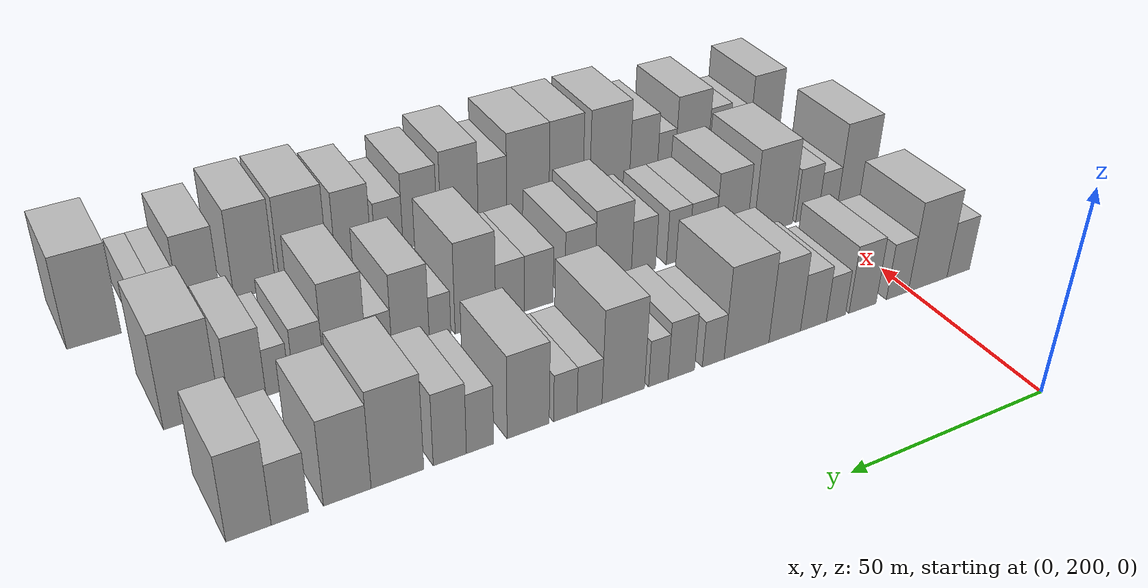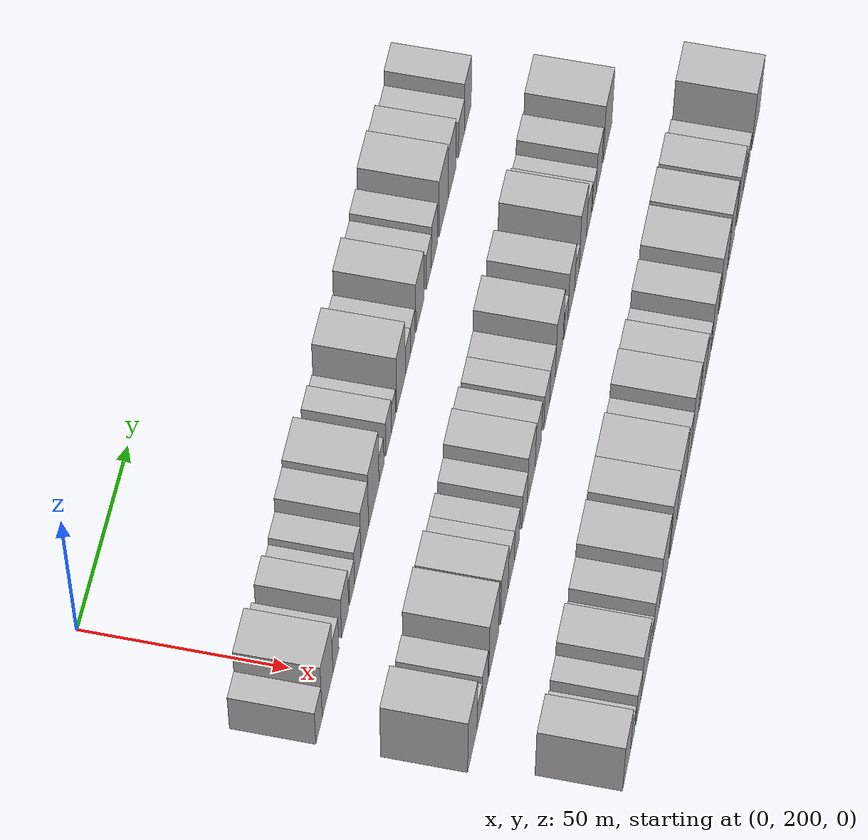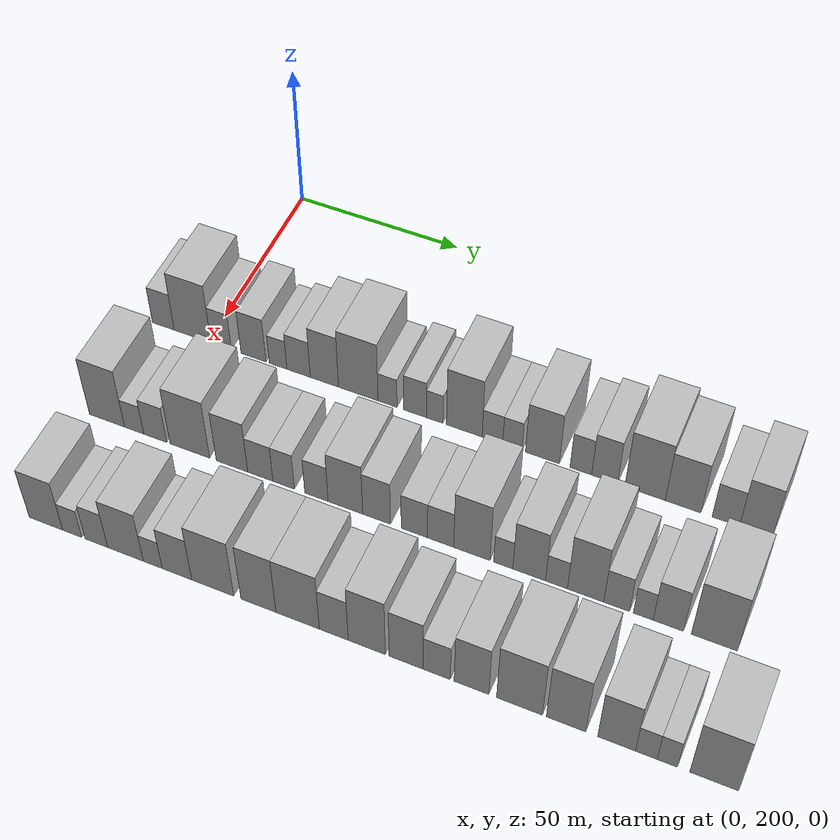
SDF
<sdf version="1.6">
 <world name="default">
  <model name="building_57">
   <static>1</static>
   <pose>50.0000 185.6866 0 0.000000 0.000000 0.000000</pose>
   <link name="link">
    <pose>0 0 7.50 0 0 0</pose>
    <collision name="collision"><geometry><box><size>20.0000 6.8643 15.0000</size></box></geometry></collision>
    <visual name="visual">
     <cast_shadows>0</cast_shadows>
     <geometry><box><size>20.0000 6.8643 15.0000</size></box></geometry>
     <material>
      <script>
       <uri>model://HANNAS_wall/materials/scripts</uri>
       <uri>model://HANNAS_wall/materials/textures</uri>
       <name>vrc/HANNAS_wall</name>
      </script>
     </material>
    </visual>
   </link>
  </model>
  <model name="building_58">
   <static>1</static>
   <pose>50.0000 194.8957 0 0.000000 0.000000 0.000000</pose>
   <link name="link">
    <pose>0 0 12.00 0 0 0</pose>
    <collision name="collision"><geometry><box><size>20.0000 11.5538 24.0000</size></box></geometry></collision>
    <visual name="visual">
     <cast_shadows>0</cast_shadows>
     <geometry><box><size>20.0000 11.5538 24.0000</size></box></geometry>
     <material>
      <script>
       <uri>model://HANNAS_wall/materials/scripts</uri>
       <uri>model://HANNAS_wall/materials/textures</uri>
       <name>vrc/HANNAS_wall</name>
      </script>
     </material>
    </visual>
   </link>
  </model>
  <model name="building_59">
   <static>1</static>
   <pose>50.0000 203.8842 0 0.000000 0.000000 0.000000</pose>
   <link name="link">
    <pose>0 0 7.50 0 0 0</pose>
    <collision name="collision"><geometry><box><size>20.0000 6.4232 15.0000</size></box></geometry></collision>
    <visual name="visual">
     <cast_shadows>0</cast_shadows>
     <geometry><box><size>20.0000 6.4232 15.0000</size></box></geometry>
     <material>
      <script>
       <uri>model://HANNAS_wall/materials/scripts</uri>
       <uri>model://HANNAS_wall/materials/textures</uri>
       <name>vrc/HANNAS_wall</name>
      </script>
     </material>
    </visual>
   </link>
  </model>
  <model name="building_60">
   <static>1</static>
   <pose>50.0000 213.9516 0 0.000000 0.000000 0.000000</pose>
   <link name="link">
    <pose>0 0 9.00 0 0 0</pose>
    <collision name="collision"><geometry><box><size>20.0000 7.7117 18.0000</size></box></geometry></collision>
    <visual name="visual">
     <cast_shadows>0</cast_shadows>
     <geometry><box><size>20.0000 7.7117 18.0000</size></box></geometry>
     <material>
      <script>
       <uri>model://HANNAS_wall/materials/scripts</uri>
       <uri>model://HANNAS_wall/materials/textures</uri>
       <name>vrc/HANNAS_wall</name>
      </script>
     </material>
    </visual>
   </link>
  </model>
  <model name="building_61">
   <static>1</static>
   <pose>50.0000 221.4927 0 0.000000 0.000000 0.000000</pose>
   <link name="link">
    <pose>0 0 6.00 0 0 0</pose>
    <collision name="collision"><geometry><box><size>20.0000 5.3703 12.0000</size></box></geometry></collision>
    <visual name="visual">
     <cast_shadows>0</cast_shadows>
     <geometry><box><size>20.0000 5.3703 12.0000</size></box></geometry>
     <material>
      <script>
       <uri>model://HANNAS_wall/materials/scripts</uri>
       <uri>model://HANNAS_wall/materials/textures</uri>
       <name>vrc/HANNAS_wall</name>
      </script>
     </material>
    </visual>
   </link>
  </model>
  <model name="building_62">
   <static>1</static>
   <pose>50.0000 227.7485 0 0.000000 0.000000 0.000000</pose>
   <link name="link">
    <pose>0 0 7.50 0 0 0</pose>
    <collision name="collision"><geometry><box><size>20.0000 7.1415 15.0000</size></box></geometry></collision>
    <visual name="visual">
     <cast_shadows>0</cast_shadows>
     <geometry><box><size>20.0000 7.1415 15.0000</size></box></geometry>
     <material>
      <script>
       <uri>model://HANNAS_wall/materials/scripts</uri>
       <uri>model://HANNAS_wall/materials/textures</uri>
       <name>vrc/HANNAS_wall</name>
      </script>
     </material>
    </visual>
   </link>
  </model>
  <model name="building_63">
   <static>1</static>
   <pose>50.0000 235.5819 0 0.000000 0.000000 0.000000</pose>
   <link name="link">
    <pose>0 0 10.50 0 0 0</pose>
    <collision name="collision"><geometry><box><size>20.0000 8.5252 21.0000</size></box></geometry></collision>
    <visual name="visual">
     <cast_shadows>0</cast_shadows>
     <geometry><box><size>20.0000 8.5252 21.0000</size></box></geometry>
     <material>
      <script>
       <uri>model://HANNAS_wall/materials/scripts</uri>
       <uri>model://HANNAS_wall/materials/textures</uri>
       <name>vrc/HANNAS_wall</name>
      </script>
     </material>
    </visual>
   </link>
  </model>
  <model name="building_64">
   <static>1</static>
   <pose>50.0000 245.7437 0 0.000000 0.000000 0.000000</pose>
   <link name="link">
    <pose>0 0 12.00 0 0 0</pose>
    <collision name="collision"><geometry><box><size>20.0000 11.7984 24.0000</size></box></geometry></collision>
    <visual name="visual">
     <cast_shadows>0</cast_shadows>
     <geometry><box><size>20.0000 11.7984 24.0000</size></box></geometry>
     <material>
      <script>
       <uri>model://HANNAS_wall/materials/scripts</uri>
       <uri>model://HANNAS_wall/materials/textures</uri>
       <name>vrc/HANNAS_wall</name>
      </script>
     </material>
    </visual>
   </link>
  </model>
  <model name="building_65">
   <static>1</static>
   <pose>50.0000 254.4534 0 0.000000 0.000000 0.000000</pose>
   <link name="link">
    <pose>0 0 6.00 0 0 0</pose>
    <collision name="collision"><geometry><box><size>20.0000 5.6208 12.0000</size></box></geometry></collision>
    <visual name="visual">
     <cast_shadows>0</cast_shadows>
     <geometry><box><size>20.0000 5.6208 12.0000</size></box></geometry>
     <material>
      <script>
       <uri>model://HANNAS_wall/materials/scripts</uri>
       <uri>model://HANNAS_wall/materials/textures</uri>
       <name>vrc/HANNAS_wall</name>
      </script>
     </material>
    </visual>
   </link>
  </model>
  <model name="building_66">
   <static>1</static>
   <pose>50.0000 262.5858 0 0.000000 0.000000 0.000000</pose>
   <link name="link">
    <pose>0 0 7.50 0 0 0</pose>
    <collision name="collision"><geometry><box><size>20.0000 6.6440 15.0000</size></box></geometry></collision>
    <visual name="visual">
     <cast_shadows>0</cast_shadows>
     <geometry><box><size>20.0000 6.6440 15.0000</size></box></geometry>
     <material>
      <script>
       <uri>model://HANNAS_wall/materials/scripts</uri>
       <uri>model://HANNAS_wall/materials/textures</uri>
       <name>vrc/HANNAS_wall</name>
      </script>
     </material>
    </visual>
   </link>
  </model>
  <model name="building_67">
   <static>1</static>
   <pose>50.0000 268.3231 0 0.000000 0.000000 0.000000</pose>
   <link name="link">
    <pose>0 0 6.00 0 0 0</pose>
    <collision name="collision"><geometry><box><size>20.0000 4.8306 12.0000</size></box></geometry></collision>
    <visual name="visual">
     <cast_shadows>0</cast_shadows>
     <geometry><box><size>20.0000 4.8306 12.0000</size></box></geometry>
     <material>
      <script>
       <uri>model://HANNAS_wall/materials/scripts</uri>
       <uri>model://HANNAS_wall/materials/textures</uri>
       <name>vrc/HANNAS_wall</name>
      </script>
     </material>
    </visual>
   </link>
  </model>
  <model name="building_68">
   <static>1</static>
   <pose>50.0000 276.8979 0 0.000000 0.000000 0.000000</pose>
   <link name="link">
    <pose>0 0 12.00 0 0 0</pose>
    <collision name="collision"><geometry><box><size>20.0000 10.3191 24.0000</size></box></geometry></collision>
    <visual name="visual">
     <cast_shadows>0</cast_shadows>
     <geometry><box><size>20.0000 10.3191 24.0000</size></box></geometry>
     <material>
      <script>
       <uri>model://HANNAS_wall/materials/scripts</uri>
       <uri>model://HANNAS_wall/materials/textures</uri>
       <name>vrc/HANNAS_wall</name>
      </script>
     </material>
    </visual>
   </link>
  </model>
  <model name="building_69">
   <static>1</static>
   <pose>50.0000 285.0169 0 0.000000 0.000000 0.000000</pose>
   <link name="link">
    <pose>0 0 6.00 0 0 0</pose>
    <collision name="collision"><geometry><box><size>20.0000 5.9189 12.0000</size></box></geometry></collision>
    <visual name="visual">
     <cast_shadows>0</cast_shadows>
     <geometry><box><size>20.0000 5.9189 12.0000</size></box></geometry>
     <material>
      <script>
       <uri>model://HANNAS_wall/materials/scripts</uri>
       <uri>model://HANNAS_wall/materials/textures</uri>
       <name>vrc/HANNAS_wall</name>
      </script>
     </material>
    </visual>
   </link>
  </model>
  <model name="building_70">
   <static>1</static>
   <pose>50.0000 290.7122 0 0.000000 0.000000 0.000000</pose>
   <link name="link">
    <pose>0 0 6.00 0 0 0</pose>
    <collision name="collision"><geometry><box><size>20.0000 5.4716 12.0000</size></box></geometry></collision>
    <visual name="visual">
     <cast_shadows>0</cast_shadows>
     <geometry><box><size>20.0000 5.4716 12.0000</size></box></geometry>
     <material>
      <script>
       <uri>model://HANNAS_wall/materials/scripts</uri>
       <uri>model://HANNAS_wall/materials/textures</uri>
       <name>vrc/HANNAS_wall</name>
      </script>
     </material>
    </visual>
   </link>
  </model>
  <model name="building_71">
   <static>1</static>
   <pose>50.0000 299.2420 0 0.000000 0.000000 0.000000</pose>
   <link name="link">
    <pose>0 0 10.50 0 0 0</pose>
    <collision name="collision"><geometry><box><size>20.0000 9.5879 21.0000</size></box></geometry></collision>
    <visual name="visual">
     <cast_shadows>0</cast_shadows>
     <geometry><box><size>20.0000 9.5879 21.0000</size></box></geometry>
     <material>
      <script>
       <uri>model://HANNAS_wall/materials/scripts</uri>
       <uri>model://HANNAS_wall/materials/textures</uri>
       <name>vrc/HANNAS_wall</name>
      </script>
     </material>
    </visual>
   </link>
  </model>
  <model name="building_72">
   <static>1</static>
   <pose>50.0000 310.0381 0 0.000000 0.000000 0.000000</pose>
   <link name="link">
    <pose>0 0 7.50 0 0 0</pose>
    <collision name="collision"><geometry><box><size>20.0000 6.0043 15.0000</size></box></geometry></collision>
    <visual name="visual">
     <cast_shadows>0</cast_shadows>
     <geometry><box><size>20.0000 6.0043 15.0000</size></box></geometry>
     <material>
      <script>
       <uri>model://HANNAS_wall/materials/scripts</uri>
       <uri>model://HANNAS_wall/materials/textures</uri>
       <name>vrc/HANNAS_wall</name>
      </script>
     </material>
    </visual>
   </link>
  </model>
  <model name="building_73">
   <static>1</static>
   <pose>50.0000 316.6440 0 0.000000 0.000000 0.000000</pose>
   <link name="link">
    <pose>0 0 9.00 0 0 0</pose>
    <collision name="collision"><geometry><box><size>20.0000 7.2076 18.0000</size></box></geometry></collision>
    <visual name="visual">
     <cast_shadows>0</cast_shadows>
     <geometry><box><size>20.0000 7.2076 18.0000</size></box></geometry>
     <material>
      <script>
       <uri>model://HANNAS_wall/materials/scripts</uri>
       <uri>model://HANNAS_wall/materials/textures</uri>
       <name>vrc/HANNAS_wall</name>
      </script>
     </material>
    </visual>
   </link>
  </model>
  <model name="building_74">
   <static>1</static>
   <pose>50.0000 327.7805 0 0.000000 0.000000 0.000000</pose>
   <link name="link">
    <pose>0 0 12.00 0 0 0</pose>
    <collision name="collision"><geometry><box><size>20.0000 11.0653 24.0000</size></box></geometry></collision>
    <visual name="visual">
     <cast_shadows>0</cast_shadows>
     <geometry><box><size>20.0000 11.0653 24.0000</size></box></geometry>
     <material>
      <script>
       <uri>model://HANNAS_wall/materials/scripts</uri>
       <uri>model://HANNAS_wall/materials/textures</uri>
       <name>vrc/HANNAS_wall</name>
      </script>
     </material>
    </visual>
   </link>
  </model>
  <model name="building_75">
   <static>1</static>
   <pose>50.0000 338.1726 0 0.000000 0.000000 0.000000</pose>
   <link name="link">
    <pose>0 0 10.50 0 0 0</pose>
    <collision name="collision"><geometry><box><size>20.0000 9.7191 21.0000</size></box></geometry></collision>
    <visual name="visual">
     <cast_shadows>0</cast_shadows>
     <geometry><box><size>20.0000 9.7191 21.0000</size></box></geometry>
     <material>
      <script>
       <uri>model://HANNAS_wall/materials/scripts</uri>
       <uri>model://HANNAS_wall/materials/textures</uri>
       <name>vrc/HANNAS_wall</name>
      </script>
     </material>
    </visual>
   </link>
  </model>
  <model name="building_76">
   <static>1</static>
   <pose>50.0000 349.6856 0 0.000000 0.000000 0.000000</pose>
   <link name="link">
    <pose>0 0 7.50 0 0 0</pose>
    <collision name="collision"><geometry><box><size>20.0000 7.3069 15.0000</size></box></geometry></collision>
    <visual name="visual">
     <cast_shadows>0</cast_shadows>
     <geometry><box><size>20.0000 7.3069 15.0000</size></box></geometry>
     <material>
      <script>
       <uri>model://HANNAS_wall/materials/scripts</uri>
       <uri>model://HANNAS_wall/materials/textures</uri>
       <name>vrc/HANNAS_wall</name>
      </script>
     </material>
    </visual>
   </link>
  </model>
  <model name="building_77">
   <static>1</static>
   <pose>50.0000 357.7112 0 0.000000 0.000000 0.000000</pose>
   <link name="link">
    <pose>0 0 10.50 0 0 0</pose>
    <collision name="collision"><geometry><box><size>20.0000 8.7443 21.0000</size></box></geometry></collision>
    <visual name="visual">
     <cast_shadows>0</cast_shadows>
     <geometry><box><size>20.0000 8.7443 21.0000</size></box></geometry>
     <material>
      <script>
       <uri>model://HANNAS_wall/materials/scripts</uri>
       <uri>model://HANNAS_wall/materials/textures</uri>
       <name>vrc/HANNAS_wall</name>
      </script>
     </material>
    </visual>
   </link>
  </model>
  <model name="building_143">
   <static>1</static>
   <pose>85.0000 187.5379 0 0.000000 0.000000 0.000000</pose>
   <link name="link">
    <pose>0 0 12.00 0 0 0</pose>
    <collision name="collision"><geometry><box><size>20.0000 10.7951 24.0000</size></box></geometry></collision>
    <visual name="visual">
     <cast_shadows>0</cast_shadows>
     <geometry><box><size>20.0000 10.7951 24.0000</size></box></geometry>
     <material>
      <script>
       <uri>model://HANNAS_wall/materials/scripts</uri>
       <uri>model://HANNAS_wall/materials/textures</uri>
       <name>vrc/HANNAS_wall</name>
      </script>
     </material>
    </visual>
   </link>
  </model>
  <model name="building_144">
   <static>1</static>
   <pose>85.0000 195.8500 0 0.000000 0.000000 0.000000</pose>
   <link name="link">
    <pose>0 0 6.00 0 0 0</pose>
    <collision name="collision"><geometry><box><size>20.0000 5.8291 12.0000</size></box></geometry></collision>
    <visual name="visual">
     <cast_shadows>0</cast_shadows>
     <geometry><box><size>20.0000 5.8291 12.0000</size></box></geometry>
     <material>
      <script>
       <uri>model://HANNAS_wall/materials/scripts</uri>
       <uri>model://HANNAS_wall/materials/textures</uri>
       <name>vrc/HANNAS_wall</name>
      </script>
     </material>
    </visual>
   </link>
  </model>
  <model name="building_145">
   <static>1</static>
   <pose>85.0000 202.2458 0 0.000000 0.000000 0.000000</pose>
   <link name="link">
    <pose>0 0 7.50 0 0 0</pose>
    <collision name="collision"><geometry><box><size>20.0000 6.9625 15.0000</size></box></geometry></collision>
    <visual name="visual">
     <cast_shadows>0</cast_shadows>
     <geometry><box><size>20.0000 6.9625 15.0000</size></box></geometry>
     <material>
      <script>
       <uri>model://HANNAS_wall/materials/scripts</uri>
       <uri>model://HANNAS_wall/materials/textures</uri>
       <name>vrc/HANNAS_wall</name>
      </script>
     </material>
    </visual>
   </link>
  </model>
  <model name="building_146">
   <static>1</static>
   <pose>85.0000 212.6402 0 0.000000 0.000000 0.000000</pose>
   <link name="link">
    <pose>0 0 12.00 0 0 0</pose>
    <collision name="collision"><geometry><box><size>20.0000 11.8263 24.0000</size></box></geometry></collision>
    <visual name="visual">
     <cast_shadows>0</cast_shadows>
     <geometry><box><size>20.0000 11.8263 24.0000</size></box></geometry>
     <material>
      <script>
       <uri>model://HANNAS_wall/materials/scripts</uri>
       <uri>model://HANNAS_wall/materials/textures</uri>
       <name>vrc/HANNAS_wall</name>
      </script>
     </material>
    </visual>
   </link>
  </model>
  <model name="building_147">
   <static>1</static>
   <pose>85.0000 225.1928 0 0.000000 0.000000 0.000000</pose>
   <link name="link">
    <pose>0 0 10.50 0 0 0</pose>
    <collision name="collision"><geometry><box><size>20.0000 9.2789 21.0000</size></box></geometry></collision>
    <visual name="visual">
     <cast_shadows>0</cast_shadows>
     <geometry><box><size>20.0000 9.2789 21.0000</size></box></geometry>
     <material>
      <script>
       <uri>model://HANNAS_wall/materials/scripts</uri>
       <uri>model://HANNAS_wall/materials/textures</uri>
       <name>vrc/HANNAS_wall</name>
      </script>
     </material>
    </visual>
   </link>
  </model>
  <model name="building_148">
   <static>1</static>
   <pose>85.0000 233.5112 0 0.000000 0.000000 0.000000</pose>
   <link name="link">
    <pose>0 0 7.50 0 0 0</pose>
    <collision name="collision"><geometry><box><size>20.0000 7.3578 15.0000</size></box></geometry></collision>
    <visual name="visual">
     <cast_shadows>0</cast_shadows>
     <geometry><box><size>20.0000 7.3578 15.0000</size></box></geometry>
     <material>
      <script>
       <uri>model://HANNAS_wall/materials/scripts</uri>
       <uri>model://HANNAS_wall/materials/textures</uri>
       <name>vrc/HANNAS_wall</name>
      </script>
     </material>
    </visual>
   </link>
  </model>
  <model name="building_149">
   <static>1</static>
   <pose>85.0000 240.3214 0 0.000000 0.000000 0.000000</pose>
   <link name="link">
    <pose>0 0 7.50 0 0 0</pose>
    <collision name="collision"><geometry><box><size>20.0000 6.2627 15.0000</size></box></geometry></collision>
    <visual name="visual">
     <cast_shadows>0</cast_shadows>
     <geometry><box><size>20.0000 6.2627 15.0000</size></box></geometry>
     <material>
      <script>
       <uri>model://HANNAS_wall/materials/scripts</uri>
       <uri>model://HANNAS_wall/materials/textures</uri>
       <name>vrc/HANNAS_wall</name>
      </script>
     </material>
    </visual>
   </link>
  </model>
  <model name="building_150">
   <static>1</static>
   <pose>85.0000 249.7911 0 0.000000 0.000000 0.000000</pose>
   <link name="link">
    <pose>0 0 7.50 0 0 0</pose>
    <collision name="collision"><geometry><box><size>20.0000 6.6767 15.0000</size></box></geometry></collision>
    <visual name="visual">
     <cast_shadows>0</cast_shadows>
     <geometry><box><size>20.0000 6.6767 15.0000</size></box></geometry>
     <material>
      <script>
       <uri>model://HANNAS_wall/materials/scripts</uri>
       <uri>model://HANNAS_wall/materials/textures</uri>
       <name>vrc/HANNAS_wall</name>
      </script>
     </material>
    </visual>
   </link>
  </model>
  <model name="building_151">
   <static>1</static>
   <pose>85.0000 258.0603 0 0.000000 0.000000 0.000000</pose>
   <link name="link">
    <pose>0 0 10.50 0 0 0</pose>
    <collision name="collision"><geometry><box><size>20.0000 9.8616 21.0000</size></box></geometry></collision>
    <visual name="visual">
     <cast_shadows>0</cast_shadows>
     <geometry><box><size>20.0000 9.8616 21.0000</size></box></geometry>
     <material>
      <script>
       <uri>model://HANNAS_wall/materials/scripts</uri>
       <uri>model://HANNAS_wall/materials/textures</uri>
       <name>vrc/HANNAS_wall</name>
      </script>
     </material>
    </visual>
   </link>
  </model>
  <model name="building_152">
   <static>1</static>
   <pose>85.0000 266.9146 0 0.000000 0.000000 0.000000</pose>
   <link name="link">
    <pose>0 0 9.00 0 0 0</pose>
    <collision name="collision"><geometry><box><size>20.0000 7.8469 18.0000</size></box></geometry></collision>
    <visual name="visual">
     <cast_shadows>0</cast_shadows>
     <geometry><box><size>20.0000 7.8469 18.0000</size></box></geometry>
     <material>
      <script>
       <uri>model://HANNAS_wall/materials/scripts</uri>
       <uri>model://HANNAS_wall/materials/textures</uri>
       <name>vrc/HANNAS_wall</name>
      </script>
     </material>
    </visual>
   </link>
  </model>
  <model name="building_153">
   <static>1</static>
   <pose>85.0000 277.4880 0 0.000000 0.000000 0.000000</pose>
   <link name="link">
    <pose>0 0 7.50 0 0 0</pose>
    <collision name="collision"><geometry><box><size>20.0000 7.2999 15.0000</size></box></geometry></collision>
    <visual name="visual">
     <cast_shadows>0</cast_shadows>
     <geometry><box><size>20.0000 7.2999 15.0000</size></box></geometry>
     <material>
      <script>
       <uri>model://HANNAS_wall/materials/scripts</uri>
       <uri>model://HANNAS_wall/materials/textures</uri>
       <name>vrc/HANNAS_wall</name>
      </script>
     </material>
    </visual>
   </link>
  </model>
  <model name="building_154">
   <static>1</static>
   <pose>85.0000 284.7739 0 0.000000 0.000000 0.000000</pose>
   <link name="link">
    <pose>0 0 7.50 0 0 0</pose>
    <collision name="collision"><geometry><box><size>20.0000 7.2719 15.0000</size></box></geometry></collision>
    <visual name="visual">
     <cast_shadows>0</cast_shadows>
     <geometry><box><size>20.0000 7.2719 15.0000</size></box></geometry>
     <material>
      <script>
       <uri>model://HANNAS_wall/materials/scripts</uri>
       <uri>model://HANNAS_wall/materials/textures</uri>
       <name>vrc/HANNAS_wall</name>
      </script>
     </material>
    </visual>
   </link>
  </model>
  <model name="building_155">
   <static>1</static>
   <pose>85.0000 293.3978 0 0.000000 0.000000 0.000000</pose>
   <link name="link">
    <pose>0 0 12.00 0 0 0</pose>
    <collision name="collision"><geometry><box><size>20.0000 9.9759 24.0000</size></box></geometry></collision>
    <visual name="visual">
     <cast_shadows>0</cast_shadows>
     <geometry><box><size>20.0000 9.9759 24.0000</size></box></geometry>
     <material>
      <script>
       <uri>model://HANNAS_wall/materials/scripts</uri>
       <uri>model://HANNAS_wall/materials/textures</uri>
       <name>vrc/HANNAS_wall</name>
      </script>
     </material>
    </visual>
   </link>
  </model>
  <model name="building_156">
   <static>1</static>
   <pose>85.0000 301.9777 0 0.000000 0.000000 0.000000</pose>
   <link name="link">
    <pose>0 0 6.00 0 0 0</pose>
    <collision name="collision"><geometry><box><size>20.0000 5.1839 12.0000</size></box></geometry></collision>
    <visual name="visual">
     <cast_shadows>0</cast_shadows>
     <geometry><box><size>20.0000 5.1839 12.0000</size></box></geometry>
     <material>
      <script>
       <uri>model://HANNAS_wall/materials/scripts</uri>
       <uri>model://HANNAS_wall/materials/textures</uri>
       <name>vrc/HANNAS_wall</name>
      </script>
     </material>
    </visual>
   </link>
  </model>
  <model name="building_157">
   <static>1</static>
   <pose>85.0000 308.9791 0 0.000000 0.000000 0.000000</pose>
   <link name="link">
    <pose>0 0 10.50 0 0 0</pose>
    <collision name="collision"><geometry><box><size>20.0000 8.8189 21.0000</size></box></geometry></collision>
    <visual name="visual">
     <cast_shadows>0</cast_shadows>
     <geometry><box><size>20.0000 8.8189 21.0000</size></box></geometry>
     <material>
      <script>
       <uri>model://HANNAS_wall/materials/scripts</uri>
       <uri>model://HANNAS_wall/materials/textures</uri>
       <name>vrc/HANNAS_wall</name>
      </script>
     </material>
    </visual>
   </link>
  </model>
  <model name="building_158">
   <static>1</static>
   <pose>85.0000 316.3170 0 0.000000 0.000000 0.000000</pose>
   <link name="link">
    <pose>0 0 6.00 0 0 0</pose>
    <collision name="collision"><geometry><box><size>20.0000 5.8568 12.0000</size></box></geometry></collision>
    <visual name="visual">
     <cast_shadows>0</cast_shadows>
     <geometry><box><size>20.0000 5.8568 12.0000</size></box></geometry>
     <material>
      <script>
       <uri>model://HANNAS_wall/materials/scripts</uri>
       <uri>model://HANNAS_wall/materials/textures</uri>
       <name>vrc/HANNAS_wall</name>
      </script>
     </material>
    </visual>
   </link>
  </model>
  <model name="building_159">
   <static>1</static>
   <pose>85.0000 324.0528 0 0.000000 0.000000 0.000000</pose>
   <link name="link">
    <pose>0 0 12.00 0 0 0</pose>
    <collision name="collision"><geometry><box><size>20.0000 9.6148 24.0000</size></box></geometry></collision>
    <visual name="visual">
     <cast_shadows>0</cast_shadows>
     <geometry><box><size>20.0000 9.6148 24.0000</size></box></geometry>
     <material>
      <script>
       <uri>model://HANNAS_wall/materials/scripts</uri>
       <uri>model://HANNAS_wall/materials/textures</uri>
       <name>vrc/HANNAS_wall</name>
      </script>
     </material>
    </visual>
   </link>
  </model>
  <model name="building_160">
   <static>1</static>
   <pose>85.0000 332.2493 0 0.000000 0.000000 0.000000</pose>
   <link name="link">
    <pose>0 0 7.50 0 0 0</pose>
    <collision name="collision"><geometry><box><size>20.0000 6.7783 15.0000</size></box></geometry></collision>
    <visual name="visual">
     <cast_shadows>0</cast_shadows>
     <geometry><box><size>20.0000 6.7783 15.0000</size></box></geometry>
     <material>
      <script>
       <uri>model://HANNAS_wall/materials/scripts</uri>
       <uri>model://HANNAS_wall/materials/textures</uri>
       <name>vrc/HANNAS_wall</name>
      </script>
     </material>
    </visual>
   </link>
  </model>
  <model name="building_161">
   <static>1</static>
   <pose>85.0000 339.2103 0 0.000000 0.000000 0.000000</pose>
   <link name="link">
    <pose>0 0 6.00 0 0 0</pose>
    <collision name="collision"><geometry><box><size>20.0000 5.1438 12.0000</size></box></geometry></collision>
    <visual name="visual">
     <cast_shadows>0</cast_shadows>
     <geometry><box><size>20.0000 5.1438 12.0000</size></box></geometry>
     <material>
      <script>
       <uri>model://HANNAS_wall/materials/scripts</uri>
       <uri>model://HANNAS_wall/materials/textures</uri>
       <name>vrc/HANNAS_wall</name>
      </script>
     </material>
    </visual>
   </link>
  </model>
  <model name="building_162">
   <static>1</static>
   <pose>85.0000 345.7147 0 0.000000 0.000000 0.000000</pose>
   <link name="link">
    <pose>0 0 9.00 0 0 0</pose>
    <collision name="collision"><geometry><box><size>20.0000 7.8648 18.0000</size></box></geometry></collision>
    <visual name="visual">
     <cast_shadows>0</cast_shadows>
     <geometry><box><size>20.0000 7.8648 18.0000</size></box></geometry>
     <material>
      <script>
       <uri>model://HANNAS_wall/materials/scripts</uri>
       <uri>model://HANNAS_wall/materials/textures</uri>
       <name>vrc/HANNAS_wall</name>
      </script>
     </material>
    </visual>
   </link>
  </model>
  <model name="building_163">
   <static>1</static>
   <pose>85.0000 357.5236 0 0.000000 0.000000 0.000000</pose>
   <link name="link">
    <pose>0 0 12.00 0 0 0</pose>
    <collision name="collision"><geometry><box><size>20.0000 11.7530 24.0000</size></box></geometry></collision>
    <visual name="visual">
     <cast_shadows>0</cast_shadows>
     <geometry><box><size>20.0000 11.7530 24.0000</size></box></geometry>
     <material>
      <script>
       <uri>model://HANNAS_wall/materials/scripts</uri>
       <uri>model://HANNAS_wall/materials/textures</uri>
       <name>vrc/HANNAS_wall</name>
      </script>
     </material>
    </visual>
   </link>
  </model>
  <model name="building_229">
   <static>1</static>
   <pose>120.0000 189.5138 0 0.000000 0.000000 0.000000</pose>
   <link name="link">
    <pose>0 0 10.50 0 0 0</pose>
    <collision name="collision"><geometry><box><size>20.0000 9.9120 21.0000</size></box></geometry></collision>
    <visual name="visual">
     <cast_shadows>0</cast_shadows>
     <geometry><box><size>20.0000 9.9120 21.0000</size></box></geometry>
     <material>
      <script>
       <uri>model://HANNAS_wall/materials/scripts</uri>
       <uri>model://HANNAS_wall/materials/textures</uri>
       <name>vrc/HANNAS_wall</name>
      </script>
     </material>
    </visual>
   </link>
  </model>
  <model name="building_230">
   <static>1</static>
   <pose>120.0000 197.2774 0 0.000000 0.000000 0.000000</pose>
   <link name="link">
    <pose>0 0 6.00 0 0 0</pose>
    <collision name="collision"><geometry><box><size>20.0000 5.6152 12.0000</size></box></geometry></collision>
    <visual name="visual">
     <cast_shadows>0</cast_shadows>
     <geometry><box><size>20.0000 5.6152 12.0000</size></box></geometry>
     <material>
      <script>
       <uri>model://HANNAS_wall/materials/scripts</uri>
       <uri>model://HANNAS_wall/materials/textures</uri>
       <name>vrc/HANNAS_wall</name>
      </script>
     </material>
    </visual>
   </link>
  </model>
  <model name="building_231">
   <static>1</static>
   <pose>120.0000 204.3695 0 0.000000 0.000000 0.000000</pose>
   <link name="link">
    <pose>0 0 7.50 0 0 0</pose>
    <collision name="collision"><geometry><box><size>20.0000 6.5690 15.0000</size></box></geometry></collision>
    <visual name="visual">
     <cast_shadows>0</cast_shadows>
     <geometry><box><size>20.0000 6.5690 15.0000</size></box></geometry>
     <material>
      <script>
       <uri>model://HANNAS_wall/materials/scripts</uri>
       <uri>model://HANNAS_wall/materials/textures</uri>
       <name>vrc/HANNAS_wall</name>
      </script>
     </material>
    </visual>
   </link>
  </model>
  <model name="building_232">
   <static>1</static>
   <pose>120.0000 212.7962 0 0.000000 0.000000 0.000000</pose>
   <link name="link">
    <pose>0 0 10.50 0 0 0</pose>
    <collision name="collision"><geometry><box><size>20.0000 10.2843 21.0000</size></box></geometry></collision>
    <visual name="visual">
     <cast_shadows>0</cast_shadows>
     <geometry><box><size>20.0000 10.2843 21.0000</size></box></geometry>
     <material>
      <script>
       <uri>model://HANNAS_wall/materials/scripts</uri>
       <uri>model://HANNAS_wall/materials/textures</uri>
       <name>vrc/HANNAS_wall</name>
      </script>
     </material>
    </visual>
   </link>
  </model>
  <model name="building_233">
   <static>1</static>
   <pose>120.0000 220.6530 0 0.000000 0.000000 0.000000</pose>
   <link name="link">
    <pose>0 0 6.00 0 0 0</pose>
    <collision name="collision"><geometry><box><size>20.0000 5.4294 12.0000</size></box></geometry></collision>
    <visual name="visual">
     <cast_shadows>0</cast_shadows>
     <geometry><box><size>20.0000 5.4294 12.0000</size></box></geometry>
     <material>
      <script>
       <uri>model://HANNAS_wall/materials/scripts</uri>
       <uri>model://HANNAS_wall/materials/textures</uri>
       <name>vrc/HANNAS_wall</name>
      </script>
     </material>
    </visual>
   </link>
  </model>
  <model name="building_234">
   <static>1</static>
   <pose>120.0000 227.5698 0 0.000000 0.000000 0.000000</pose>
   <link name="link">
    <pose>0 0 9.00 0 0 0</pose>
    <collision name="collision"><geometry><box><size>20.0000 8.4041 18.0000</size></box></geometry></collision>
    <visual name="visual">
     <cast_shadows>0</cast_shadows>
     <geometry><box><size>20.0000 8.4041 18.0000</size></box></geometry>
     <material>
      <script>
       <uri>model://HANNAS_wall/materials/scripts</uri>
       <uri>model://HANNAS_wall/materials/textures</uri>
       <name>vrc/HANNAS_wall</name>
      </script>
     </material>
    </visual>
   </link>
  </model>
  <model name="building_235">
   <static>1</static>
   <pose>120.0000 237.6838 0 0.000000 0.000000 0.000000</pose>
   <link name="link">
    <pose>0 0 12.00 0 0 0</pose>
    <collision name="collision"><geometry><box><size>20.0000 11.8238 24.0000</size></box></geometry></collision>
    <visual name="visual">
     <cast_shadows>0</cast_shadows>
     <geometry><box><size>20.0000 11.8238 24.0000</size></box></geometry>
     <material>
      <script>
       <uri>model://HANNAS_wall/materials/scripts</uri>
       <uri>model://HANNAS_wall/materials/textures</uri>
       <name>vrc/HANNAS_wall</name>
      </script>
     </material>
    </visual>
   </link>
  </model>
  <model name="building_236">
   <static>1</static>
   <pose>120.0000 250.4515 0 0.000000 0.000000 0.000000</pose>
   <link name="link">
    <pose>0 0 12.00 0 0 0</pose>
    <collision name="collision"><geometry><box><size>20.0000 9.7115 24.0000</size></box></geometry></collision>
    <visual name="visual">
     <cast_shadows>0</cast_shadows>
     <geometry><box><size>20.0000 9.7115 24.0000</size></box></geometry>
     <material>
      <script>
       <uri>model://HANNAS_wall/materials/scripts</uri>
       <uri>model://HANNAS_wall/materials/textures</uri>
       <name>vrc/HANNAS_wall</name>
      </script>
     </material>
    </visual>
   </link>
  </model>
  <model name="building_237">
   <static>1</static>
   <pose>120.0000 261.2480 0 0.000000 0.000000 0.000000</pose>
   <link name="link">
    <pose>0 0 12.00 0 0 0</pose>
    <collision name="collision"><geometry><box><size>20.0000 11.8816 24.0000</size></box></geometry></collision>
    <visual name="visual">
     <cast_shadows>0</cast_shadows>
     <geometry><box><size>20.0000 11.8816 24.0000</size></box></geometry>
     <material>
      <script>
       <uri>model://HANNAS_wall/materials/scripts</uri>
       <uri>model://HANNAS_wall/materials/textures</uri>
       <name>vrc/HANNAS_wall</name>
      </script>
     </material>
    </visual>
   </link>
  </model>
  <model name="building_238">
   <static>1</static>
   <pose>120.0000 271.0911 0 0.000000 0.000000 0.000000</pose>
   <link name="link">
    <pose>0 0 9.00 0 0 0</pose>
    <collision name="collision"><geometry><box><size>20.0000 7.8045 18.0000</size></box></geometry></collision>
    <visual name="visual">
     <cast_shadows>0</cast_shadows>
     <geometry><box><size>20.0000 7.8045 18.0000</size></box></geometry>
     <material>
      <script>
       <uri>model://HANNAS_wall/materials/scripts</uri>
       <uri>model://HANNAS_wall/materials/textures</uri>
       <name>vrc/HANNAS_wall</name>
      </script>
     </material>
    </visual>
   </link>
  </model>
  <model name="building_239">
   <static>1</static>
   <pose>120.0000 279.9861 0 0.000000 0.000000 0.000000</pose>
   <link name="link">
    <pose>0 0 12.00 0 0 0</pose>
    <collision name="collision"><geometry><box><size>20.0000 9.9856 24.0000</size></box></geometry></collision>
    <visual name="visual">
     <cast_shadows>0</cast_shadows>
     <geometry><box><size>20.0000 9.9856 24.0000</size></box></geometry>
     <material>
      <script>
       <uri>model://HANNAS_wall/materials/scripts</uri>
       <uri>model://HANNAS_wall/materials/textures</uri>
       <name>vrc/HANNAS_wall</name>
      </script>
     </material>
    </visual>
   </link>
  </model>
  <model name="building_240">
   <static>1</static>
   <pose>120.0000 290.4724 0 0.000000 0.000000 0.000000</pose>
   <link name="link">
    <pose>0 0 10.50 0 0 0</pose>
    <collision name="collision"><geometry><box><size>20.0000 8.9871 21.0000</size></box></geometry></collision>
    <visual name="visual">
     <cast_shadows>0</cast_shadows>
     <geometry><box><size>20.0000 8.9871 21.0000</size></box></geometry>
     <material>
      <script>
       <uri>model://HANNAS_wall/materials/scripts</uri>
       <uri>model://HANNAS_wall/materials/textures</uri>
       <name>vrc/HANNAS_wall</name>
      </script>
     </material>
    </visual>
   </link>
  </model>
  <model name="building_241">
   <static>1</static>
   <pose>120.0000 298.5331 0 0.000000 0.000000 0.000000</pose>
   <link name="link">
    <pose>0 0 7.50 0 0 0</pose>
    <collision name="collision"><geometry><box><size>20.0000 7.1342 15.0000</size></box></geometry></collision>
    <visual name="visual">
     <cast_shadows>0</cast_shadows>
     <geometry><box><size>20.0000 7.1342 15.0000</size></box></geometry>
     <material>
      <script>
       <uri>model://HANNAS_wall/materials/scripts</uri>
       <uri>model://HANNAS_wall/materials/textures</uri>
       <name>vrc/HANNAS_wall</name>
      </script>
     </material>
    </visual>
   </link>
  </model>
  <model name="building_242">
   <static>1</static>
   <pose>120.0000 307.6098 0 0.000000 0.000000 0.000000</pose>
   <link name="link">
    <pose>0 0 10.50 0 0 0</pose>
    <collision name="collision"><geometry><box><size>20.0000 9.0193 21.0000</size></box></geometry></collision>
    <visual name="visual">
     <cast_shadows>0</cast_shadows>
     <geometry><box><size>20.0000 9.0193 21.0000</size></box></geometry>
     <material>
      <script>
       <uri>model://HANNAS_wall/materials/scripts</uri>
       <uri>model://HANNAS_wall/materials/textures</uri>
       <name>vrc/HANNAS_wall</name>
      </script>
     </material>
    </visual>
   </link>
  </model>
  <model name="building_243">
   <static>1</static>
   <pose>120.0000 319.9893 0 0.000000 0.000000 0.000000</pose>
   <link name="link">
    <pose>0 0 12.00 0 0 0</pose>
    <collision name="collision"><geometry><box><size>20.0000 11.7396 24.0000</size></box></geometry></collision>
    <visual name="visual">
     <cast_shadows>0</cast_shadows>
     <geometry><box><size>20.0000 11.7396 24.0000</size></box></geometry>
     <material>
      <script>
       <uri>model://HANNAS_wall/materials/scripts</uri>
       <uri>model://HANNAS_wall/materials/textures</uri>
       <name>vrc/HANNAS_wall</name>
      </script>
     </material>
    </visual>
   </link>
  </model>
  <model name="building_244">
   <static>1</static>
   <pose>120.0000 331.8305 0 0.000000 0.000000 0.000000</pose>
   <link name="link">
    <pose>0 0 12.00 0 0 0</pose>
    <collision name="collision"><geometry><box><size>20.0000 9.9429 24.0000</size></box></geometry></collision>
    <visual name="visual">
     <cast_shadows>0</cast_shadows>
     <geometry><box><size>20.0000 9.9429 24.0000</size></box></geometry>
     <material>
      <script>
       <uri>model://HANNAS_wall/materials/scripts</uri>
       <uri>model://HANNAS_wall/materials/textures</uri>
       <name>vrc/HANNAS_wall</name>
      </script>
     </material>
    </visual>
   </link>
  </model>
  <model name="building_245">
   <static>1</static>
   <pose>120.0000 344.4925 0 0.000000 0.000000 0.000000</pose>
   <link name="link">
    <pose>0 0 10.50 0 0 0</pose>
    <collision name="collision"><geometry><box><size>20.0000 9.3810 21.0000</size></box></geometry></collision>
    <visual name="visual">
     <cast_shadows>0</cast_shadows>
     <geometry><box><size>20.0000 9.3810 21.0000</size></box></geometry>
     <material>
      <script>
       <uri>model://HANNAS_wall/materials/scripts</uri>
       <uri>model://HANNAS_wall/materials/textures</uri>
       <name>vrc/HANNAS_wall</name>
      </script>
     </material>
    </visual>
   </link>
  </model>
  <model name="building_246">
   <static>1</static>
   <pose>120.0000 351.8672 0 0.000000 0.000000 0.000000</pose>
   <link name="link">
    <pose>0 0 6.00 0 0 0</pose>
    <collision name="collision"><geometry><box><size>20.0000 5.3684 12.0000</size></box></geometry></collision>
    <visual name="visual">
     <cast_shadows>0</cast_shadows>
     <geometry><box><size>20.0000 5.3684 12.0000</size></box></geometry>
     <material>
      <script>
       <uri>model://HANNAS_wall/materials/scripts</uri>
       <uri>model://HANNAS_wall/materials/textures</uri>
       <name>vrc/HANNAS_wall</name>
      </script>
     </material>
    </visual>
   </link>
  </model>
  <model name="building_247">
   <static>1</static>
   <pose>120.0000 357.0273 0 0.000000 0.000000 0.000000</pose>
   <link name="link">
    <pose>0 0 6.00 0 0 0</pose>
    <collision name="collision"><geometry><box><size>20.0000 4.9519 12.0000</size></box></geometry></collision>
    <visual name="visual">
     <cast_shadows>0</cast_shadows>
     <geometry><box><size>20.0000 4.9519 12.0000</size></box></geometry>
     <material>
      <script>
       <uri>model://HANNAS_wall/materials/scripts</uri>
       <uri>model://HANNAS_wall/materials/textures</uri>
       <name>vrc/HANNAS_wall</name>
      </script>
     </material>
    </visual>
   </link>
  </model>
  <model name="building_248">
   <static>1</static>
   <pose>120.0000 368.4368 0 0.000000 0.000000 0.000000</pose>
   <link name="link">
    <pose>0 0 12.00 0 0 0</pose>
    <collision name="collision"><geometry><box><size>20.0000 11.8671 24.0000</size></box></geometry></collision>
    <visual name="visual">
     <cast_shadows>0</cast_shadows>
     <geometry><box><size>20.0000 11.8671 24.0000</size></box></geometry>
     <material>
      <script>
       <uri>model://HANNAS_wall/materials/scripts</uri>
       <uri>model://HANNAS_wall/materials/textures</uri>
       <name>vrc/HANNAS_wall</name>
      </script>
     </material>
    </visual>
   </link>
  </model>
 </world>
</sdf>
